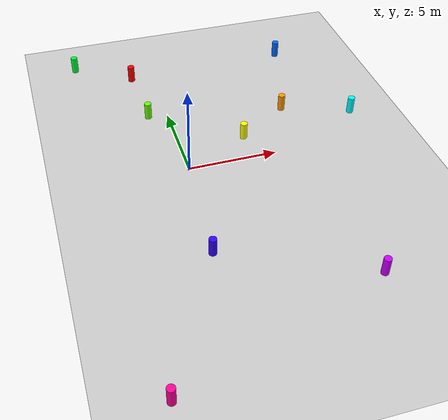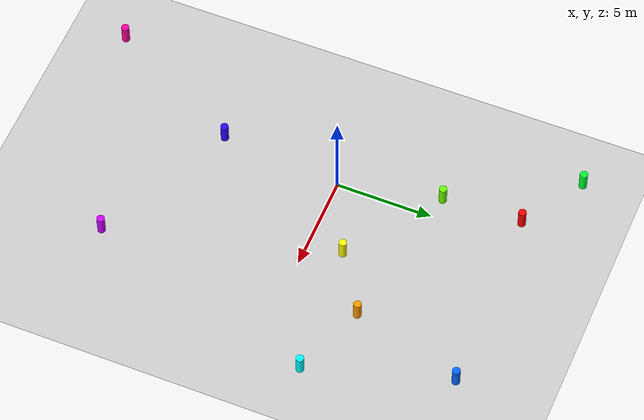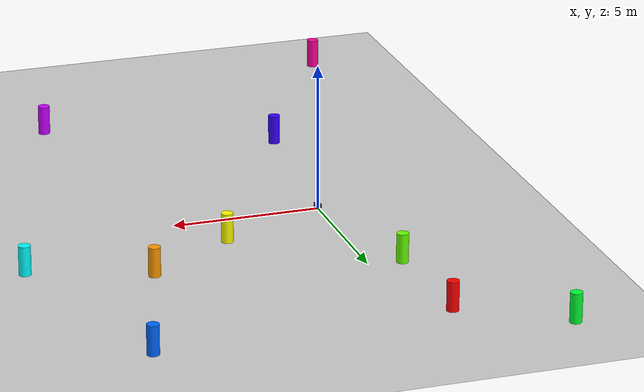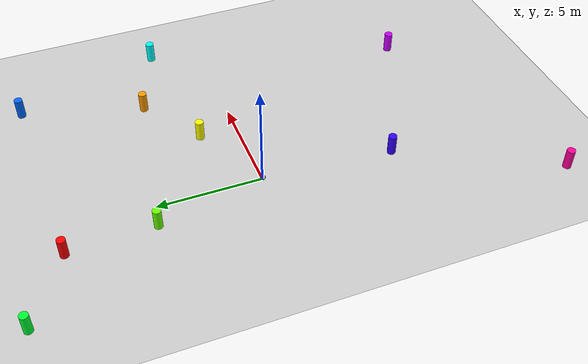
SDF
<?xml version="1.0" ?>
<sdf version="1.7">
    <world name="project_world">
        <physics name="1ms" type="ignored">
            <max_step_size>0.001</max_step_size>
            <real_time_factor>1.0</real_time_factor>
        </physics>
        <plugin
            filename="libignition-gazebo-physics-system.so"
            name="ignition::gazebo::systems::Physics">
        </plugin>
        <plugin
            filename="libignition-gazebo-user-commands-system.so"
            name="ignition::gazebo::systems::UserCommands">
        </plugin>
        <plugin
            filename="libignition-gazebo-scene-broadcaster-system.so"
            name="ignition::gazebo::systems::SceneBroadcaster">
        </plugin>
        <plugin filename="libignition-gazebo-imu-system.so"
                name="ignition::gazebo::systems::Imu">
        </plugin>
        <plugin
          filename="libignition-gazebo-sensors-system.so"
          name="ignition::gazebo::systems::Sensors">
          <render_engine>ogre2</render_engine>
        </plugin>

        <gui fullscreen="0">
            <plugin filename="GzScene3D" name="3D View">
                <ignition-gui>
                <title>3D View</title>
                <property type="bool" key="showTitleBar">false</property>
                <property type="string" key="state">docked</property>
                </ignition-gui>
                <engine>ogre2</engine>
                <scene>scene</scene>
                <ambient_light>0.4 0.4 0.4</ambient_light>
                <background_color>0.8 0.8 0.8</background_color>
            </plugin>

            <plugin filename="WorldControl" name="World control">
                <ignition-gui>
                <title>World control</title>
                <property type="bool" key="showTitleBar">false</property>
                <property type="bool" key="resizable">false</property>
                <property type="double" key="height">72</property>
                <property type="double" key="width">121</property>
                <property type="double" key="z">1</property>
                <property type="string" key="state">floating</property>
                <anchors target="3D View">
                    <line own="left" target="left"/>
                    <line own="bottom" target="bottom"/>
                </anchors>
                </ignition-gui>
                <play_pause>true</play_pause>
                <step>true</step>
                <start_paused>true</start_paused>
                <service>/world/project_world/control</service>
                <stats_topic>/world/project_world/stats</stats_topic>
            </plugin>

            <plugin filename="WorldStats" name="World stats">
                <ignition-gui>
                <title>World stats</title>
                <property type="bool" key="showTitleBar">false</property>
                <property type="bool" key="resizable">false</property>
                <property type="double" key="height">110</property>
                <property type="double" key="width">290</property>
                <property type="double" key="z">1</property>
                <property type="string" key="state">floating</property>
                <anchors target="3D View">
                    <line own="right" target="right"/>
                    <line own="bottom" target="bottom"/>
                </anchors>
                </ignition-gui>
                <sim_time>true</sim_time>
                <real_time>true</real_time>
                <real_time_factor>true</real_time_factor>
                <iterations>true</iterations>
                <topic>/world/project_world/stats</topic>
            </plugin>

            <plugin filename="EntityTree" name="Entity tree">
            </plugin>
        </gui>

        <light type="directional" name="sun">
            <cast_shadows>true</cast_shadows>
            <pose>0 0 10 0 0 0</pose>
            <diffuse>0.8 0.8 0.8 1</diffuse>
            <specular>0.2 0.2 0.2 1</specular>
            <attenuation>
                <range>1000</range>
                <constant>0.9</constant>
                <linear>0.01</linear>
                <quadratic>0.001</quadratic>
            </attenuation>
            <direction>-0.5 0.1 -0.9</direction>
        </light>

        <model name="ground_plane">
            <static>true</static>
            <link name="link">
                <collision name="collision">
                <geometry>
                    <plane>
                    <normal>0 0 1</normal>
                    </plane>
                </geometry>
                </collision>
                <visual name="visual">
                <geometry>
                    <plane>
                    <normal>0 0 1</normal>
                    <size>100 100</size>
                    </plane>
                </geometry>
                <material>
                    <ambient>0.8 0.8 0.8 1</ambient>
                    <diffuse>0.8 0.8 0.8 1</diffuse>
                    <specular>0.8 0.8 0.8 1</specular>
                </material>
                </visual>
            </link>
        </model>

        <!-- Generated Landmarks (10 total) -->

        <model name='landmark_0_color_000'>
            <static>true</static>
            <pose>-1.284 9.280 0.500 0 0 0</pose>
            <link name='link'>
                <visual name='visual'>
                    <geometry>
                        <cylinder>
                            <radius>0.2</radius>
                            <length>1.0</length>
                        </cylinder>
                    </geometry>
                    <material>
                        <ambient>1.000 0.000 0.000 1</ambient>
                        <diffuse>1.000 0.000 0.000 1</diffuse>
                    </material>
                </visual>
                <collision name='collision'>
                    <geometry>
                        <cylinder>
                            <radius>0.2</radius>
                            <length>1.0</length>
                        </cylinder>
                    </geometry>
                </collision>
            </link>
        </model>

        <model name='landmark_1_color_018'>
            <static>true</static>
            <pose>6.726 3.802 0.500 0 0 0</pose>
            <link name='link'>
                <visual name='visual'>
                    <geometry>
                        <cylinder>
                            <radius>0.2</radius>
                            <length>1.0</length>
                        </cylinder>
                    </geometry>
                    <material>
                        <ambient>1.000 0.600 0.000 1</ambient>
                        <diffuse>1.000 0.600 0.000 1</diffuse>
                    </material>
                </visual>
                <collision name='collision'>
                    <geometry>
                        <cylinder>
                            <radius>0.2</radius>
                            <length>1.0</length>
                        </cylinder>
                    </geometry>
                </collision>
            </link>
        </model>

        <model name='landmark_2_color_036'>
            <static>true</static>
            <pose>3.703 1.809 0.500 0 0 0</pose>
            <link name='link'>
                <visual name='visual'>
                    <geometry>
                        <cylinder>
                            <radius>0.2</radius>
                            <length>1.0</length>
                        </cylinder>
                    </geometry>
                    <material>
                        <ambient>1.000 1.000 0.000 1</ambient>
                        <diffuse>1.000 1.000 0.000 1</diffuse>
                    </material>
                </visual>
                <collision name='collision'>
                    <geometry>
                        <cylinder>
                            <radius>0.2</radius>
                            <length>1.0</length>
                        </cylinder>
                    </geometry>
                </collision>
            </link>
        </model>

        <model name='landmark_3_color_054'>
            <static>true</static>
            <pose>-1.118 5.175 0.500 0 0 0</pose>
            <link name='link'>
                <visual name='visual'>
                    <geometry>
                        <cylinder>
                            <radius>0.2</radius>
                            <length>1.0</length>
                        </cylinder>
                    </geometry>
                    <material>
                        <ambient>0.400 1.000 0.000 1</ambient>
                        <diffuse>0.400 1.000 0.000 1</diffuse>
                    </material>
                </visual>
                <collision name='collision'>
                    <geometry>
                        <cylinder>
                            <radius>0.2</radius>
                            <length>1.0</length>
                        </cylinder>
                    </geometry>
                </collision>
            </link>
        </model>

        <model name='landmark_4_color_072'>
            <static>true</static>
            <pose>-4.557 11.293 0.500 0 0 0</pose>
            <link name='link'>
                <visual name='visual'>
                    <geometry>
                        <cylinder>
                            <radius>0.2</radius>
                            <length>1.0</length>
                        </cylinder>
                    </geometry>
                    <material>
                        <ambient>0.000 1.000 0.200 1</ambient>
                        <diffuse>0.000 1.000 0.200 1</diffuse>
                    </material>
                </visual>
                <collision name='collision'>
                    <geometry>
                        <cylinder>
                            <radius>0.2</radius>
                            <length>1.0</length>
                        </cylinder>
                    </geometry>
                </collision>
            </link>
        </model>

        <model name='landmark_5_color_090'>
            <static>true</static>
            <pose>10.601 2.423 0.500 0 0 0</pose>
            <link name='link'>
                <visual name='visual'>
                    <geometry>
                        <cylinder>
                            <radius>0.2</radius>
                            <length>1.0</length>
                        </cylinder>
                    </geometry>
                    <material>
                        <ambient>0.000 1.000 1.000 1</ambient>
                        <diffuse>0.000 1.000 1.000 1</diffuse>
                    </material>
                </visual>
                <collision name='collision'>
                    <geometry>
                        <cylinder>
                            <radius>0.2</radius>
                            <length>1.0</length>
                        </cylinder>
                    </geometry>
                </collision>
            </link>
        </model>

        <model name='landmark_6_color_108'>
            <static>true</static>
            <pose>8.428 9.561 0.500 0 0 0</pose>
            <link name='link'>
                <visual name='visual'>
                    <geometry>
                        <cylinder>
                            <radius>0.2</radius>
                            <length>1.0</length>
                        </cylinder>
                    </geometry>
                    <material>
                        <ambient>0.000 0.400 1.000 1</ambient>
                        <diffuse>0.000 0.400 1.000 1</diffuse>
                    </material>
                </visual>
                <collision name='collision'>
                    <geometry>
                        <cylinder>
                            <radius>0.2</radius>
                            <length>1.0</length>
                        </cylinder>
                    </geometry>
                </collision>
            </link>
        </model>

        <model name='landmark_7_color_126'>
            <static>true</static>
            <pose>-0.517 -6.300 0.500 0 0 0</pose>
            <link name='link'>
                <visual name='visual'>
                    <geometry>
                        <cylinder>
                            <radius>0.2</radius>
                            <length>1.0</length>
                        </cylinder>
                    </geometry>
                    <material>
                        <ambient>0.200 0.000 1.000 1</ambient>
                        <diffuse>0.200 0.000 1.000 1</diffuse>
                    </material>
                </visual>
                <collision name='collision'>
                    <geometry>
                        <cylinder>
                            <radius>0.2</radius>
                            <length>1.0</length>
                        </cylinder>
                    </geometry>
                </collision>
            </link>
        </model>

        <model name='landmark_8_color_144'>
            <static>true</static>
            <pose>6.872 -9.703 0.500 0 0 0</pose>
            <link name='link'>
                <visual name='visual'>
                    <geometry>
                        <cylinder>
                            <radius>0.2</radius>
                            <length>1.0</length>
                        </cylinder>
                    </geometry>
                    <material>
                        <ambient>0.800 0.000 1.000 1</ambient>
                        <diffuse>0.800 0.000 1.000 1</diffuse>
                    </material>
                </visual>
                <collision name='collision'>
                    <geometry>
                        <cylinder>
                            <radius>0.2</radius>
                            <length>1.0</length>
                        </cylinder>
                    </geometry>
                </collision>
            </link>
        </model>

        <model name='landmark_9_color_162'>
            <static>true</static>
            <pose>-4.335 -13.472 0.500 0 0 0</pose>
            <link name='link'>
                <visual name='visual'>
                    <geometry>
                        <cylinder>
                            <radius>0.2</radius>
                            <length>1.0</length>
                        </cylinder>
                    </geometry>
                    <material>
                        <ambient>1.000 0.000 0.600 1</ambient>
                        <diffuse>1.000 0.000 0.600 1</diffuse>
                    </material>
                </visual>
                <collision name='collision'>
                    <geometry>
                        <cylinder>
                            <radius>0.2</radius>
                            <length>1.0</length>
                        </cylinder>
                    </geometry>
                </collision>
            </link>
        </model>

        <model name='turtlebot3_waffle' canonical_link='base_footprint'>
            <pose>0 0 0 0 0 0</pose>

            <link name='base_footprint'>
                <pose>0 0 0 0 0 0</pose>
                <inertial>
                    <mass>0.001</mass>
                    <inertia>
                        <ixx>0.0001</ixx><ixy>0</ixy><ixz>0</ixz>
                        <iyy>0.0001</iyy><iyz>0</iyz><izz>0.0001</izz>
                    </inertia>
                </inertial>
            </link>

            <link name='base_link'>
                <pose relative_to='base_footprint'>0 0 0.010 0 0 0</pose>
                <inertial>
                    <mass>1.3729096</mass>
                    <inertia>
                        <ixx>0.0117754808</ixx><ixy>0</ixy><ixz>0</ixz>
                        <iyy>0.0117754808</iyy><iyz>0</iyz><izz>0.0184</izz>
                    </inertia>
                </inertial>
                <!-- Main body - circular base -->
                <visual name='base_visual'>
                    <pose>0 0 0.047 0 0 0</pose>
                    <geometry>
                        <cylinder><radius>0.133</radius><length>0.094</length></cylinder>
                    </geometry>
                    <material>
                        <ambient>0.1 0.1 0.1 1</ambient>
                        <diffuse>0.1 0.1 0.1 1</diffuse>
                    </material>
                </visual>
                <!-- Top plate -->
                <visual name='top_plate_visual'>
                    <pose>0 0 0.12 0 0 0</pose>
                    <geometry>
                        <cylinder><radius>0.133</radius><length>0.02</length></cylinder>
                    </geometry>
                    <material>
                        <ambient>0.3 0.3 0.3 1</ambient>
                        <diffuse>0.3 0.3 0.3 1</diffuse>
                    </material>
                </visual>
                <collision name='base_collision'>
                    <pose>0 0 0.047 0 0 0</pose>
                    <geometry>
                        <cylinder><radius>0.133</radius><length>0.094</length></cylinder>
                    </geometry>
                </collision>

                <!-- IMU Sensor -->
                <sensor name='imu_sensor' type='imu'>
                    <always_on>true</always_on>
                    <update_rate>50</update_rate>
                    <topic>imu</topic>
                    <imu>
                        <enable_orientation>false</enable_orientation>
                        <angular_velocity>
                            <x><noise type='gaussian'><mean>0</mean><stddev>0.0</stddev></noise></x>
                            <y><noise type='gaussian'><mean>0</mean><stddev>0.0</stddev></noise></y>
                            <z><noise type='gaussian'><mean>0</mean><stddev>0.0</stddev></noise></z>
                        </angular_velocity>
                        <linear_acceleration>
                            <x><noise type='gaussian'><mean>0</mean><stddev>0.0</stddev></noise></x>
                            <y><noise type='gaussian'><mean>0</mean><stddev>0.0</stddev></noise></y>
                            <z><noise type='gaussian'><mean>0</mean><stddev>0.0</stddev></noise></z>
                        </linear_acceleration>
                    </imu>
                </sensor>
            </link>

            <!-- Camera Link -->
            <link name='camera_link'>
                <pose relative_to='base_link'>0.12 0 0.20 0 -0.15 0</pose>
                <inertial>
                    <mass>0.035</mass>
                    <inertia>
                        <ixx>0.00001</ixx><ixy>0</ixy><ixz>0</ixz>
                        <iyy>0.00001</iyy><iyz>0</iyz><izz>0.00001</izz>
                    </inertia>
                </inertial>
                <visual name='camera_visual'>
                    <geometry>
                        <box><size>0.02 0.06 0.02</size></box>
                    </geometry>
                    <material>
                        <ambient>0.0 0.0 0.8 1</ambient>
                        <diffuse>0.0 0.0 0.8 1</diffuse>
                    </material>
                </visual>
                <sensor name='camera' type='camera'>
                    <always_on>true</always_on>
                    <update_rate>10</update_rate>
                    <topic>camera/image</topic>
                    <camera>
                        <horizontal_fov>1.085</horizontal_fov>
                        <image>
                            <width>1280</width>
                            <height>720</height>
                            <format>R8G8B8</format>
                        </image>
                        <clip><near>0.1</near><far>100</far></clip>
                    </camera>
                </sensor>
            </link>

            <!-- Left Wheel -->
            <link name='wheel_left_link'>
                <pose relative_to='base_link'>0 0.144 0.033 -1.5708 0 0</pose>
                <inertial>
                    <mass>0.1</mass>
                    <inertia>
                        <ixx>0.0001</ixx><ixy>0</ixy><ixz>0</ixz>
                        <iyy>0.0001</iyy><iyz>0</iyz><izz>0.0001</izz>
                    </inertia>
                </inertial>
                <visual name='wheel_left_visual'>
                    <geometry>
                        <cylinder><radius>0.033</radius><length>0.018</length></cylinder>
                    </geometry>
                    <material>
                        <ambient>0.2 0.2 0.2 1</ambient>
                        <diffuse>0.2 0.2 0.2 1</diffuse>
                    </material>
                </visual>
                <collision name='wheel_left_collision'>
                    <geometry>
                        <cylinder><radius>0.033</radius><length>0.018</length></cylinder>
                    </geometry>
                    <surface>
                        <friction>
                            <ode><mu>1.0</mu><mu2>1.0</mu2></ode>
                        </friction>
                    </surface>
                </collision>
            </link>

            <!-- Right Wheel -->
            <link name='wheel_right_link'>
                <pose relative_to='base_link'>0 -0.144 0.033 -1.5708 0 0</pose>
                <inertial>
                    <mass>0.1</mass>
                    <inertia>
                        <ixx>0.0001</ixx><ixy>0</ixy><ixz>0</ixz>
                        <iyy>0.0001</iyy><iyz>0</iyz><izz>0.0001</izz>
                    </inertia>
                </inertial>
                <visual name='wheel_right_visual'>
                    <geometry>
                        <cylinder><radius>0.033</radius><length>0.018</length></cylinder>
                    </geometry>
                    <material>
                        <ambient>0.2 0.2 0.2 1</ambient>
                        <diffuse>0.2 0.2 0.2 1</diffuse>
                    </material>
                </visual>
                <collision name='wheel_right_collision'>
                    <geometry>
                        <cylinder><radius>0.033</radius><length>0.018</length></cylinder>
                    </geometry>
                    <surface>
                        <friction>
                            <ode><mu>1.0</mu><mu2>1.0</mu2></ode>
                        </friction>
                    </surface>
                </collision>
            </link>

            <!-- Caster Wheels -->
            <link name='caster_back_left_link'>
                <pose relative_to='base_link'>-0.090 0.047 0.005 0 0 0</pose>
                <inertial>
                    <mass>0.01</mass>
                    <inertia>
                        <ixx>0.00001</ixx><ixy>0</ixy><ixz>0</ixz>
                        <iyy>0.00001</iyy><iyz>0</iyz><izz>0.00001</izz>
                    </inertia>
                </inertial>
                <visual name='caster_visual'>
                    <geometry><sphere><radius>0.005</radius></sphere></geometry>
                    <material>
                        <ambient>0.2 0.2 0.2 1</ambient>
                        <diffuse>0.2 0.2 0.2 1</diffuse>
                    </material>
                </visual>
                <collision name='caster_collision'>
                    <geometry><sphere><radius>0.005</radius></sphere></geometry>
                    <surface>
                        <friction><ode><mu>0.0</mu><mu2>0.0</mu2></ode></friction>
                    </surface>
                </collision>
            </link>

            <link name='caster_back_right_link'>
                <pose relative_to='base_link'>-0.090 -0.047 0.005 0 0 0</pose>
                <inertial>
                    <mass>0.01</mass>
                    <inertia>
                        <ixx>0.00001</ixx><ixy>0</ixy><ixz>0</ixz>
                        <iyy>0.00001</iyy><iyz>0</iyz><izz>0.00001</izz>
                    </inertia>
                </inertial>
                <visual name='caster_visual'>
                    <geometry><sphere><radius>0.005</radius></sphere></geometry>
                    <material>
                        <ambient>0.2 0.2 0.2 1</ambient>
                        <diffuse>0.2 0.2 0.2 1</diffuse>
                    </material>
                </visual>
                <collision name='caster_collision'>
                    <geometry><sphere><radius>0.005</radius></sphere></geometry>
                    <surface>
                        <friction><ode><mu>0.0</mu><mu2>0.0</mu2></ode></friction>
                    </surface>
                </collision>
            </link>

            <!-- Joints -->
            <joint name='base_joint' type='fixed'>
                <parent>base_footprint</parent>
                <child>base_link</child>
            </joint>

            <joint name='camera_joint' type='fixed'>
                <parent>base_link</parent>
                <child>camera_link</child>
            </joint>

            <joint name='wheel_left_joint' type='revolute'>
                <parent>base_link</parent>
                <child>wheel_left_link</child>
                <axis>
                    <xyz>0 0 1</xyz>
                    <limit><lower>-1.79769e+308</lower><upper>1.79769e+308</upper></limit>
                </axis>
            </joint>

            <joint name='wheel_right_joint' type='revolute'>
                <parent>base_link</parent>
                <child>wheel_right_link</child>
                <axis>
                    <xyz>0 0 1</xyz>
                    <limit><lower>-1.79769e+308</lower><upper>1.79769e+308</upper></limit>
                </axis>
            </joint>

            <joint name='caster_back_left_joint' type='ball'>
                <parent>base_link</parent>
                <child>caster_back_left_link</child>
            </joint>

            <joint name='caster_back_right_joint' type='ball'>
                <parent>base_link</parent>
                <child>caster_back_right_link</child>
            </joint>

            <!-- Diff Drive Plugin -->
            <plugin filename='libignition-gazebo-diff-drive-system.so' name='ignition::gazebo::systems::DiffDrive'>
                <left_joint>wheel_left_joint</left_joint>
                <right_joint>wheel_right_joint</right_joint>
                <wheel_separation>0.287</wheel_separation>
                <wheel_radius>0.033</wheel_radius>
                <odom_publish_frequency>30</odom_publish_frequency>
                <topic>cmd_vel</topic>
                <odom_topic>odom</odom_topic>
                <frame_id>odom</frame_id>
                <child_frame_id>turtlebot3_waffle/base_footprint</child_frame_id>  <!-- ADD MODEL NAME PREFIX -->
            </plugin>
        </model>

    </world>
</sdf>
